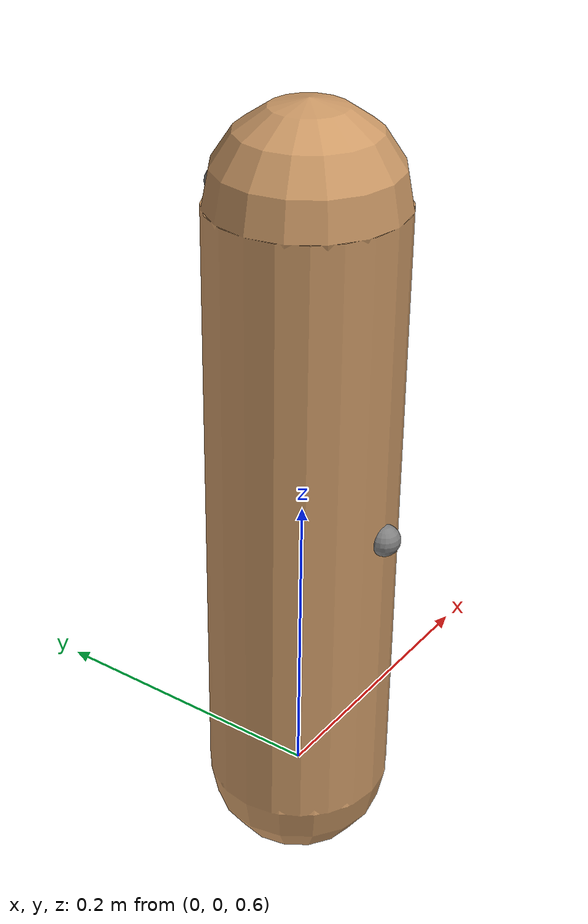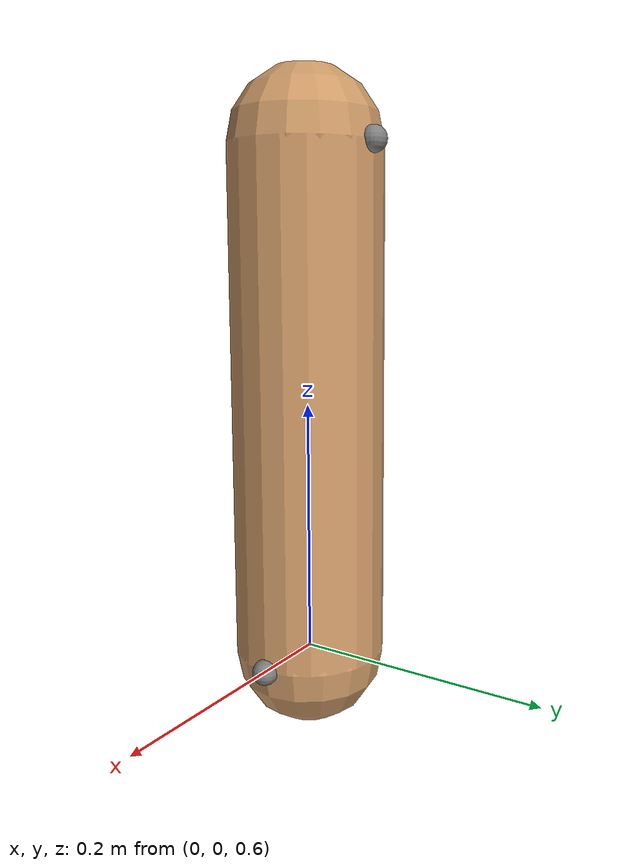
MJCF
<mujoco model="example">
	<compiler coordinate="global"/>

	<default>
		<geom rgba=".8 .6 .4 1"/>
	</default>

	<asset>
		<texture type="skybox" builtin="gradient" rgb1="1 1 1" rgb2=".6 .8 1" width="256" height="256"/>
	</asset>

	<worldbody>
		<light pos="0 1 1" dir="0 -1 -1" diffuse="1 1 1"/>
		<body>
			<geom type="capsule" fromto="0 0 1  0 0 0.6" size="0.06"/>

			<site name="top" pos="0 0.06 1" type="sphere" size="0.01"/>
			<site name="mid" pos="0 -0.06 0.8" type="sphere" size="0.01"/>
			<site name="bot" pos="0.06 0 0.6" type="sphere" size="0.01"/>

			<joint type="ball" pos="0 0 1"/>
		</body>
	</worldbody>

</mujoco>
